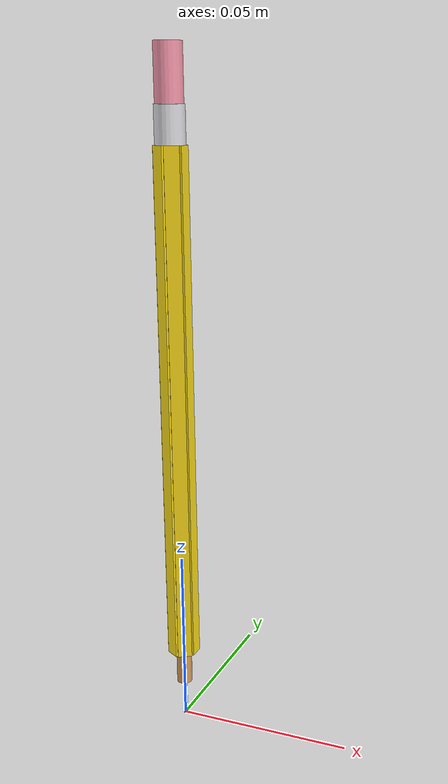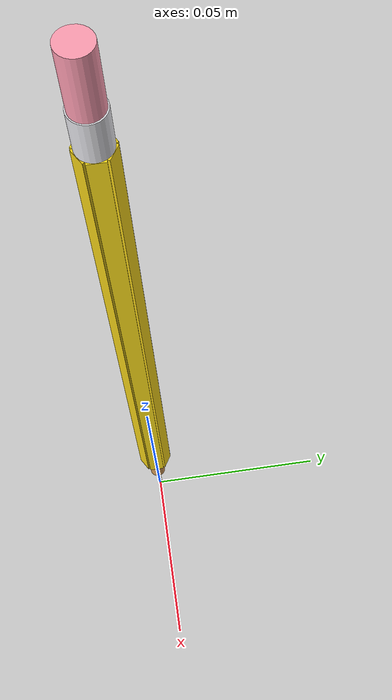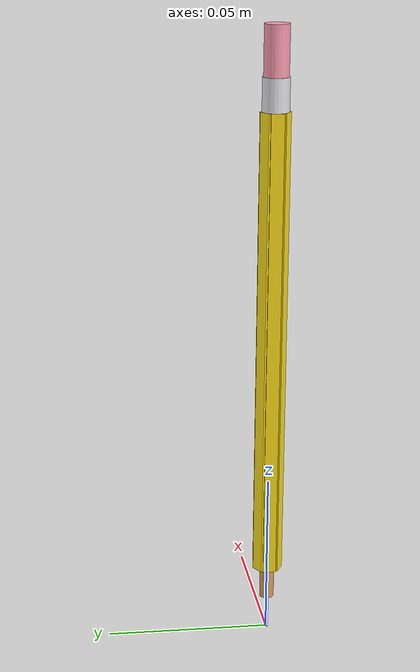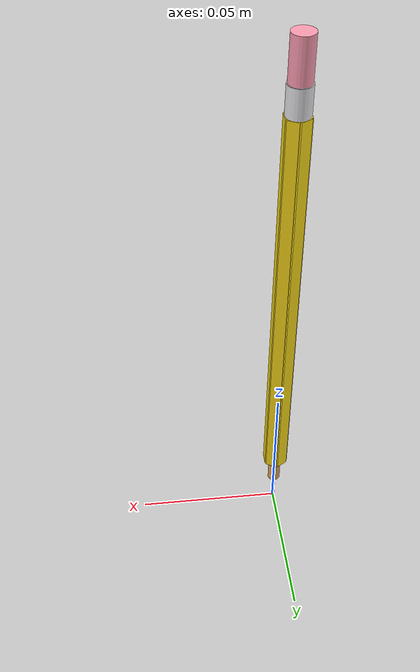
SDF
<?xml version="1.0" ?>
<sdf version="1.9">
  <model name="pencil">

    <!-- Static prop — change to false for physics simulation -->
    <static>false</static>

    <link name="base_link">
      <pose>0 0 0 0 0 0</pose>

      <inertial>
        <mass>0.01</mass>
        <inertia>
          <ixx>3e-6</ixx><ixy>0</ixy><ixz>0</ixz>
          <iyy>3e-6</iyy><iyz>0</iyz>
          <izz>1e-7</izz>
        </inertia>
      </inertial>

      <!-- ══════════════════════════════════════════
           GRAPHITE TIP  z = 0 → 0.015
           Thin dark-grey cylinder (graphite)
      ══════════════════════════════════════════ -->
      <visual name="tip_graphite">
        <pose>0 0 0.0055 0 0 0</pose>
        <geometry>
          <cylinder>
            <radius>0.0006</radius>
            <length>0.011</length>
          </cylinder>
        </geometry>
        <material>
          <ambient>0.18 0.18 0.18 1</ambient>
          <diffuse>0.18 0.18 0.18 1</diffuse>
          <specular>0.5 0.5 0.5 1</specular>
        </material>
      </visual>

      <!-- ══════════════════════════════════════════
           WOOD SHEATH  z = 0.011 → 0.021
           Slightly wider section — exposed bare wood
      ══════════════════════════════════════════ -->
      <visual name="tip_wood">
        <pose>0 0 0.016 0 0 0</pose>
        <geometry>
          <cylinder>
            <radius>0.0022</radius>
            <length>0.010</length>
          </cylinder>
        </geometry>
        <material>
          <ambient>0.72 0.50 0.28 1</ambient>
          <diffuse>0.85 0.62 0.35 1</diffuse>
          <specular>0.08 0.06 0.04 1</specular>
        </material>
      </visual>

      <!-- Tip collision covers both graphite + wood sheath -->
      <collision name="tip_col">
        <pose>0 0 0.0105 0 0 0</pose>
        <geometry>
          <cylinder>
            <radius>0.0022</radius>
            <length>0.021</length>
          </cylinder>
        </geometry>
      </collision>

      <!-- Inner fill cylinder — ensures no visible gap between panels -->
      <visual name="body_fill">
        <pose>0 0 0.093 0 0 0</pose>
        <geometry>
          <cylinder>
            <radius>0.00340</radius>
            <length>0.144</length>
          </cylinder>
        </geometry>
        <material>
          <ambient>0.95 0.82 0.08 1</ambient>
          <diffuse>1.00 0.88 0.10 1</diffuse>
          <specular>0.30 0.25 0.03 1</specular>
        </material>
      </visual>

      <!-- Panel 0 — 0° (faces +X) -->
      <visual name="body_p0">
        <pose>0.0035 0 0.093  0 0 0</pose>
        <geometry><box><size>0.0012 0.004041 0.144</size></box></geometry>
        <material>
          <ambient>0.95 0.82 0.08 1</ambient>
          <diffuse>1.00 0.88 0.10 1</diffuse>
          <specular>0.35 0.30 0.04 1</specular>
        </material>
      </visual>
      <collision name="body_p0_col">
        <pose>0.0035 0 0.093  0 0 0</pose>
        <geometry><box><size>0.0012 0.004041 0.144</size></box></geometry>
      </collision>

      <!-- Panel 1 — 60° -->
      <visual name="body_p1">
        <pose>0.001750 0.003031 0.093  0 0 1.047198</pose>
        <geometry><box><size>0.0012 0.004041 0.144</size></box></geometry>
        <material>
          <ambient>0.90 0.77 0.07 1</ambient>
          <diffuse>0.96 0.83 0.09 1</diffuse>
          <specular>0.35 0.30 0.04 1</specular>
        </material>
      </visual>
      <collision name="body_p1_col">
        <pose>0.001750 0.003031 0.093  0 0 1.047198</pose>
        <geometry><box><size>0.0012 0.004041 0.144</size></box></geometry>
      </collision>

      <!-- Panel 2 — 120° -->
      <visual name="body_p2">
        <pose>-0.001750 0.003031 0.093  0 0 2.094395</pose>
        <geometry><box><size>0.0012 0.004041 0.144</size></box></geometry>
        <material>
          <ambient>0.95 0.82 0.08 1</ambient>
          <diffuse>1.00 0.88 0.10 1</diffuse>
          <specular>0.35 0.30 0.04 1</specular>
        </material>
      </visual>
      <collision name="body_p2_col">
        <pose>-0.001750 0.003031 0.093  0 0 2.094395</pose>
        <geometry><box><size>0.0012 0.004041 0.144</size></box></geometry>
      </collision>

      <!-- Panel 3 — 180° (faces -X) -->
      <visual name="body_p3">
        <pose>-0.0035 0 0.093  0 0 3.141593</pose>
        <geometry><box><size>0.0012 0.004041 0.144</size></box></geometry>
        <material>
          <ambient>0.90 0.77 0.07 1</ambient>
          <diffuse>0.96 0.83 0.09 1</diffuse>
          <specular>0.35 0.30 0.04 1</specular>
        </material>
      </visual>
      <collision name="body_p3_col">
        <pose>-0.0035 0 0.093  0 0 3.141593</pose>
        <geometry><box><size>0.0012 0.004041 0.144</size></box></geometry>
      </collision>

      <!-- Panel 4 — 240° -->
      <visual name="body_p4">
        <pose>-0.001750 -0.003031 0.093  0 0 4.188790</pose>
        <geometry><box><size>0.0012 0.004041 0.144</size></box></geometry>
        <material>
          <ambient>0.95 0.82 0.08 1</ambient>
          <diffuse>1.00 0.88 0.10 1</diffuse>
          <specular>0.35 0.30 0.04 1</specular>
        </material>
      </visual>
      <collision name="body_p4_col">
        <pose>-0.001750 -0.003031 0.093  0 0 4.188790</pose>
        <geometry><box><size>0.0012 0.004041 0.144</size></box></geometry>
      </collision>

      <!-- Panel 5 — 300° -->
      <visual name="body_p5">
        <pose>0.001750 -0.003031 0.093  0 0 5.235988</pose>
        <geometry><box><size>0.0012 0.004041 0.144</size></box></geometry>
        <material>
          <ambient>0.90 0.77 0.07 1</ambient>
          <diffuse>0.96 0.83 0.09 1</diffuse>
          <specular>0.35 0.30 0.04 1</specular>
        </material>
      </visual>
      <collision name="body_p5_col">
        <pose>0.001750 -0.003031 0.093  0 0 5.235988</pose>
        <geometry><box><size>0.0012 0.004041 0.144</size></box></geometry>
      </collision>

      <!-- ══════════════════════════════════════════
           FERRULE  z = 0.165 → 0.175   (silver band)
           Centre z = 0.170
      ══════════════════════════════════════════ -->
      <visual name="ferrule">
        <pose>0 0 0.170 0 0 0</pose>
        <geometry>
          <cylinder>
            <radius>0.00405</radius>
            <length>0.010</length>
          </cylinder>
        </geometry>
        <material>
          <!-- Bright metallic silver for Ogre2 -->
          <ambient>0.80 0.80 0.82 1</ambient>
          <diffuse>0.90 0.90 0.92 1</diffuse>
          <specular>1.00 1.00 1.00 1</specular>
          <emissive>0.03 0.03 0.03 1</emissive>
        </material>
      </visual>
      <collision name="ferrule_col">
        <pose>0 0 0.170 0 0 0</pose>
        <geometry>
          <cylinder>
            <radius>0.00405</radius>
            <length>0.010</length>
          </cylinder>
        </geometry>
      </collision>

      <!-- ══════════════════════════════════════════
           ERASER  z = 0.175 → 0.190   (pink rubber)
           Centre z = 0.1825
      ══════════════════════════════════════════ -->
      <visual name="eraser">
        <pose>0 0 0.1825 0 0 0</pose>
        <geometry>
          <cylinder>
            <radius>0.00375</radius>
            <length>0.015</length>
          </cylinder>
        </geometry>
        <material>
          <!-- Bright pink — boosted for Ogre2 PBR pipeline -->
          <ambient>0.92 0.52 0.60 1</ambient>
          <diffuse>1.00 0.62 0.70 1</diffuse>
          <specular>0.15 0.08 0.10 1</specular>
        </material>
      </visual>
      <collision name="eraser_col">
        <pose>0 0 0.1825 0 0 0</pose>
        <geometry>
          <cylinder>
            <radius>0.00375</radius>
            <length>0.015</length>
          </cylinder>
        </geometry>
      </collision>

    </link>

  </model>
</sdf>
